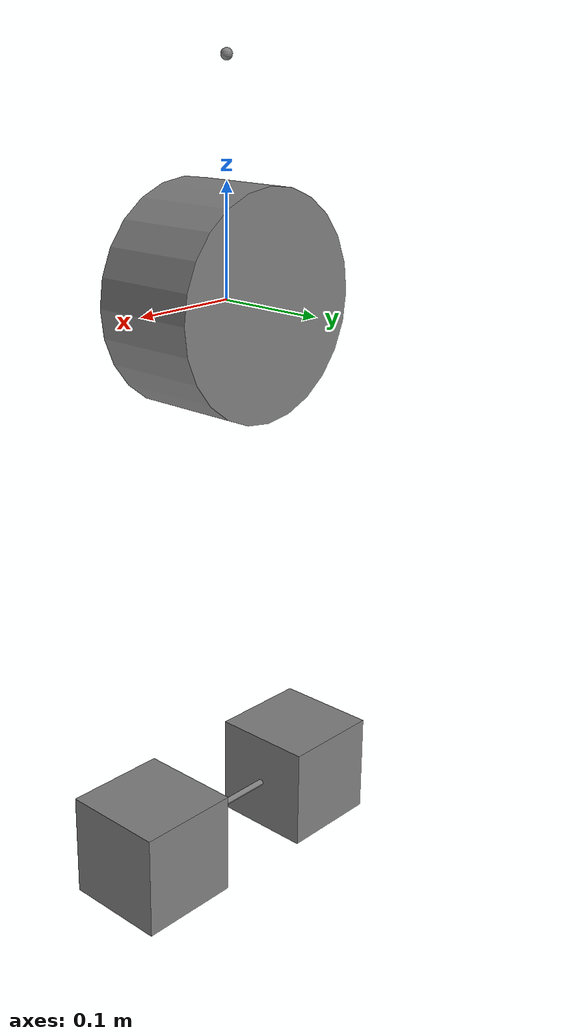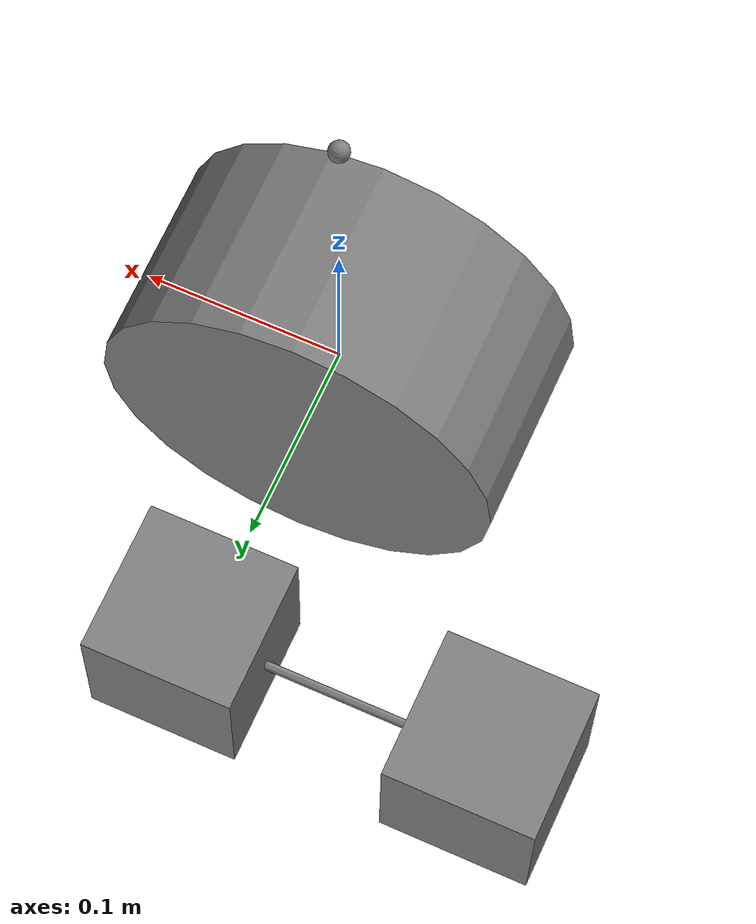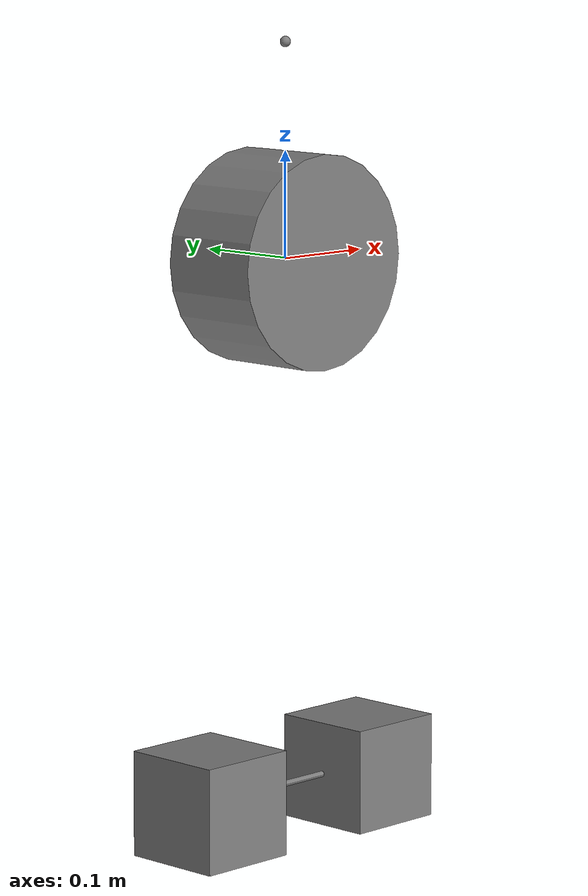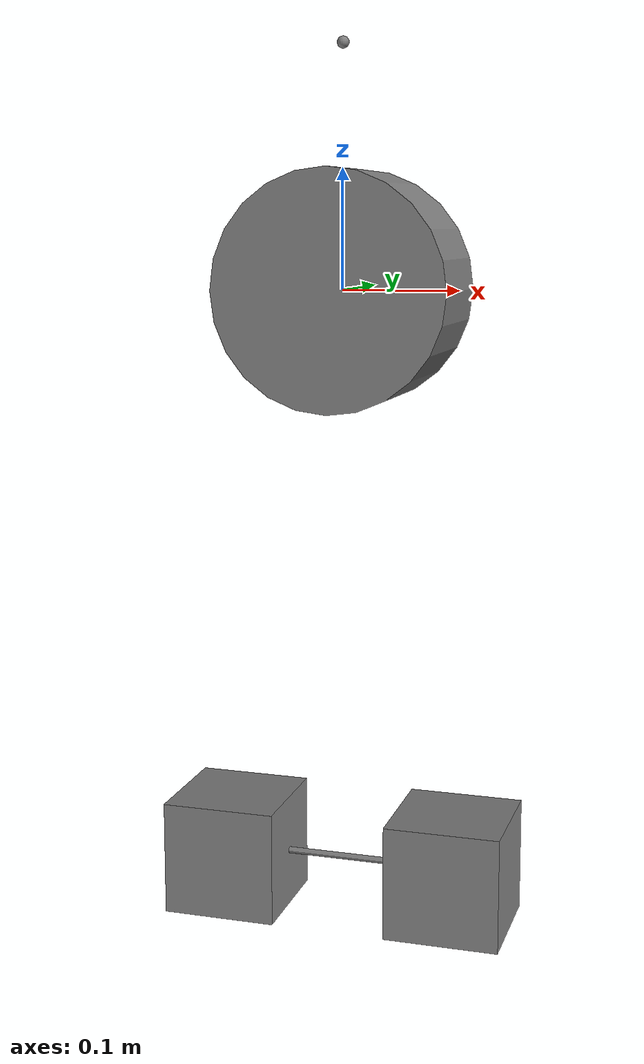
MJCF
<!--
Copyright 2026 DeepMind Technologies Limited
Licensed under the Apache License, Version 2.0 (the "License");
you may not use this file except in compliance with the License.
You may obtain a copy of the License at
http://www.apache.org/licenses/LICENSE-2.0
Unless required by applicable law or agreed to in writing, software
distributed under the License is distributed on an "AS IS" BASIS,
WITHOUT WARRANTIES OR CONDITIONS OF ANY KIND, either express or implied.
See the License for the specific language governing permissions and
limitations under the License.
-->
<mujoco>
  <option gravity="0 0 -1"/>

  <worldbody>
    <body name="pulley">
      <geom name="cylinder" type="cylinder" size="0.1 0.05" euler="90 0 0" mass="0"/>
      <site name="pulley"/>
      <site name="side" pos="0 0 0.2"/>
    </body>
    <body name="mass1" pos="-0.1 0 -0.5">
      <joint type="free" damping="1"/>
      <geom type="box" size="0.05 0.05 0.05" mass="1"/>
      <body name="massend1">
        <site name="massend1"/>
      </body>
    </body>
    <body name="mass2" pos="0.1 0 -0.5">
      <joint type="free" damping="1"/>
      <geom type="box" size="0.05 0.05 0.05" mass="1"/>
      <body name="massend2">
        <site name="massend2"/>
      </body>
    </body>
  </worldbody>

  <tendon>
    <spatial name="rope">
      <site site="massend1"/>
      <geom geom="cylinder" sidesite="side"/>
      <site site="massend2"/>
    </spatial>
  </tendon>

  <equality>
    <tendon tendon1="rope"/>
  </equality>

  <sensor>
    <force site="pulley" user="0 0 2"/>
    <torque site="pulley" user="0 0 0"/>
    <force site="massend1" user="0 0 -1"/>
    <force site="massend2" user="0 0 -1"/>
  </sensor>
</mujoco>
